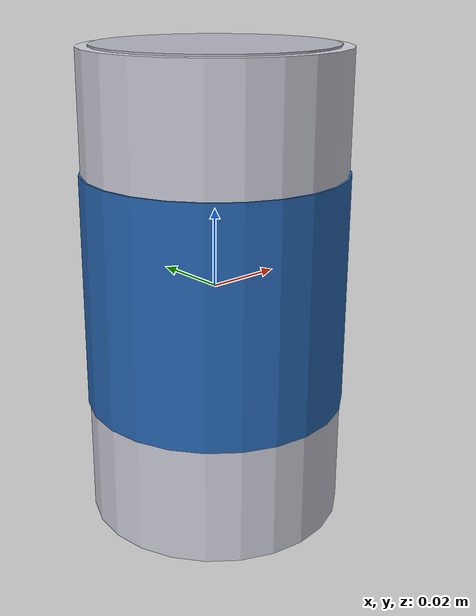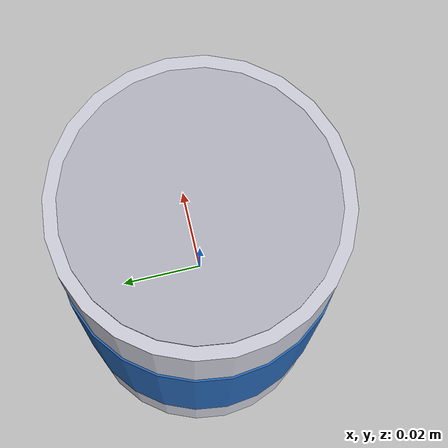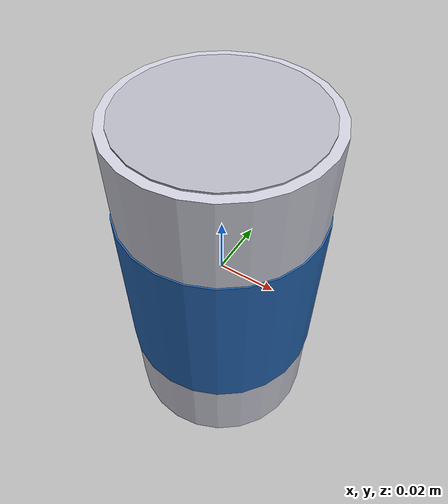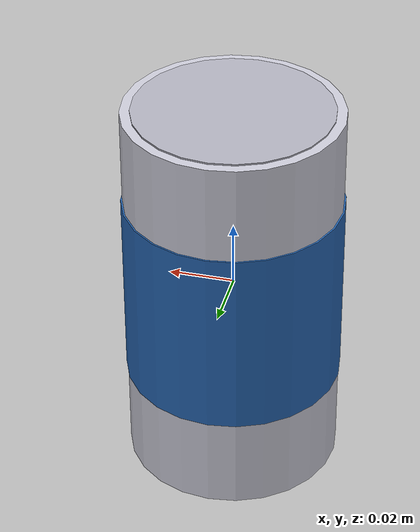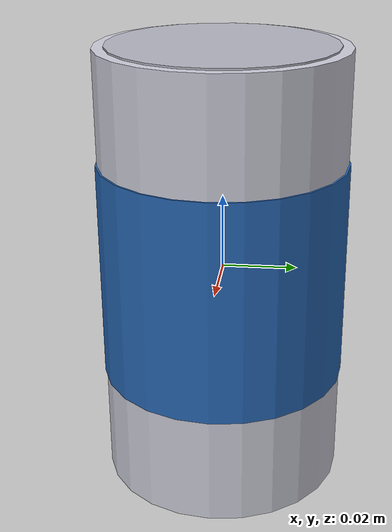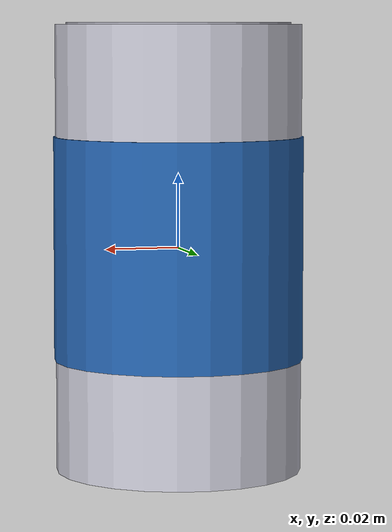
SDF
<?xml version="1.0" ?>
<!--
  Good Can Model

  Standard aluminum beverage can - undamaged.
  Dimensions: ~6.5cm diameter, ~12cm height
-->
<sdf version="1.9">
  <model name="can_good">
    <static>false</static>

    <link name="body">
      <kinematic>true</kinematic>

      <!-- Main can body -->
      <visual name="can_body">
        <geometry>
          <cylinder>
            <radius>0.033</radius>
            <length>0.12</length>
          </cylinder>
        </geometry>
        <material>
          <ambient>0.7 0.7 0.75 1</ambient>
          <diffuse>0.8 0.8 0.85 1</diffuse>
          <specular>0.9 0.9 0.9 1</specular>
          <pbr>
            <metal>
              <metalness>0.9</metalness>
              <roughness>0.3</roughness>
            </metal>
          </pbr>
        </material>
      </visual>

      <!-- Top lid -->
      <visual name="top_lid">
        <pose>0 0 0.059 0 0 0</pose>
        <geometry>
          <cylinder>
            <radius>0.030</radius>
            <length>0.003</length>
          </cylinder>
        </geometry>
        <material>
          <ambient>0.6 0.6 0.65 1</ambient>
          <diffuse>0.7 0.7 0.75 1</diffuse>
          <specular>0.85 0.85 0.85 1</specular>
          <pbr>
            <metal>
              <metalness>0.95</metalness>
              <roughness>0.2</roughness>
            </metal>
          </pbr>
        </material>
      </visual>

      <!-- Bottom -->
      <visual name="bottom">
        <pose>0 0 -0.059 0 0 0</pose>
        <geometry>
          <cylinder>
            <radius>0.030</radius>
            <length>0.003</length>
          </cylinder>
        </geometry>
        <material>
          <ambient>0.6 0.6 0.65 1</ambient>
          <diffuse>0.7 0.7 0.75 1</diffuse>
          <specular>0.85 0.85 0.85 1</specular>
          <pbr>
            <metal>
              <metalness>0.95</metalness>
              <roughness>0.2</roughness>
            </metal>
          </pbr>
        </material>
      </visual>

      <!-- Label band (colored stripe) -->
      <visual name="label">
        <pose>0 0 0 0 0 0</pose>
        <geometry>
          <cylinder>
            <radius>0.0335</radius>
            <length>0.06</length>
          </cylinder>
        </geometry>
        <material>
          <ambient>0.1 0.3 0.6 1</ambient>
          <diffuse>0.15 0.4 0.7 1</diffuse>
          <specular>0.3 0.3 0.3 1</specular>
          <pbr>
            <metal>
              <metalness>0.1</metalness>
              <roughness>0.5</roughness>
            </metal>
          </pbr>
        </material>
      </visual>

      <collision name="collision">
        <geometry>
          <cylinder>
            <radius>0.033</radius>
            <length>0.12</length>
          </cylinder>
        </geometry>
      </collision>
    </link>
  </model>
</sdf>
